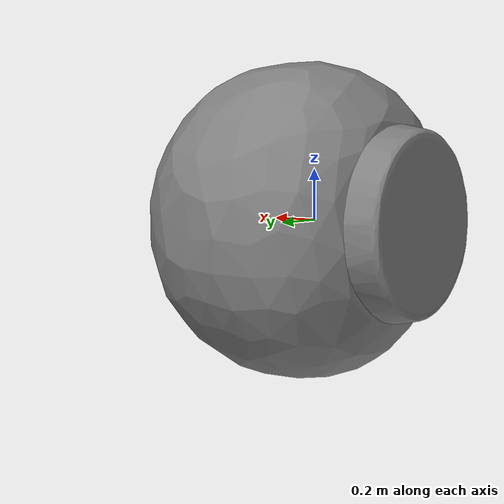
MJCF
<mujoco model="MuJoCo Model">
  <compiler angle="radian" meshdir="."/>

  <asset>
    <mesh name="convex_piece_000.obj" file="meshes/convex_piece_000.obj"/>
    <mesh name="convex_piece_001.obj" file="meshes/convex_piece_001.obj"/>
  </asset>

  <worldbody>
    <body name="object">
      <geom name="object_visual_0" type="mesh" contype="0" conaffinity="0" density="0" mesh="convex_piece_000.obj"/>
      <geom name="object_collision_0" type="mesh" mesh="convex_piece_000.obj"/>
      <geom name="object_visual_1" type="mesh" contype="0" conaffinity="0" density="0" mesh="convex_piece_001.obj"/>
      <geom name="object_collision_1" type="mesh" mesh="convex_piece_001.obj"/>
    </body>
  </worldbody>
</mujoco>
